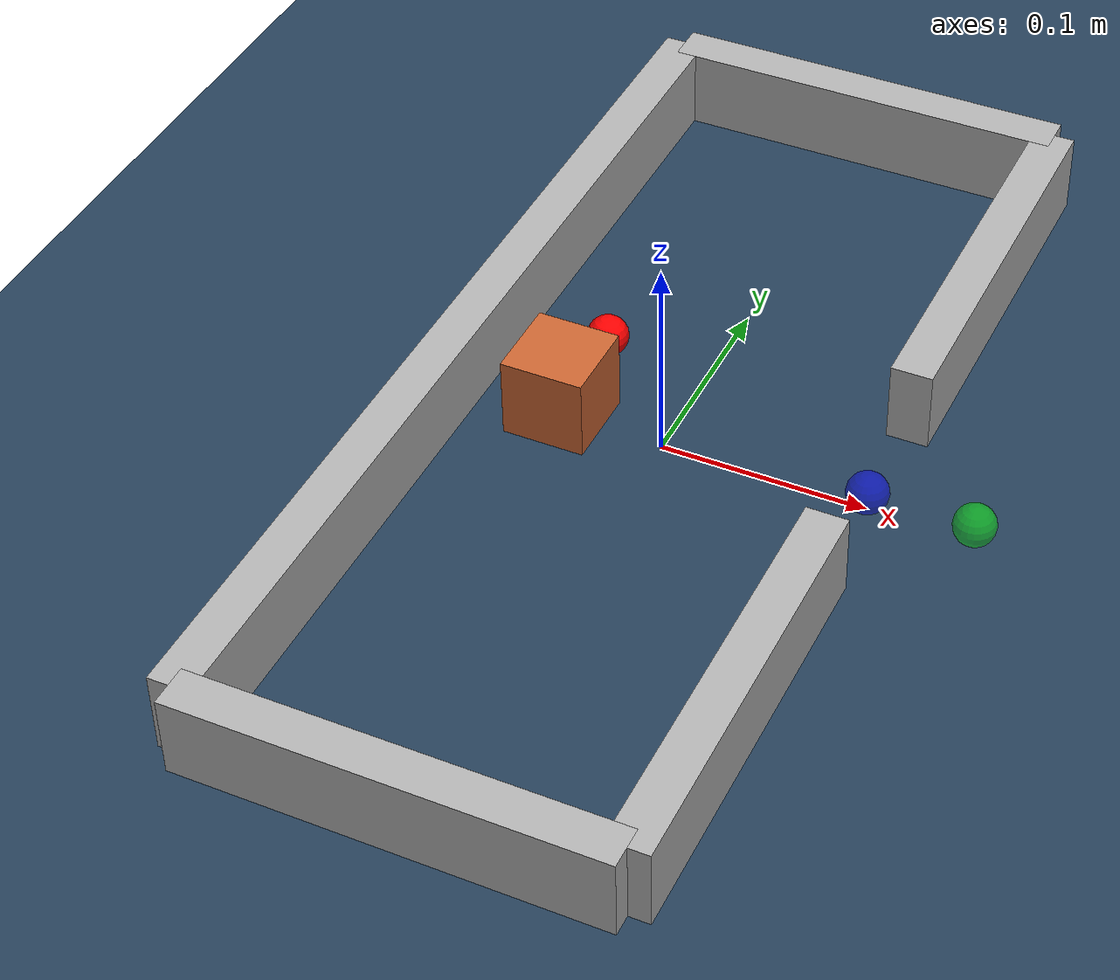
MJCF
<mujoco model="particle_corridor_scene">
  <!-- Model that includes lighting and a ground. -->
  <include file="particle_corridor.xml"/>

  <statistic center="0 0 0" extent="0.9"/>

  <visual>
    <headlight diffuse="0.6 0.6 0.6" ambient="0.3 0.3 0.3" specular="0 0 0"/>
    <rgba haze="0.15 0.25 0.35 1"/>
  </visual>

  <asset>
    <texture type="skybox" builtin="gradient" rgb1="0.3 0.5 0.7" rgb2="0 0 0" width="512" height="3072"/>
    <texture type="2d" name="groundplane" builtin="checker" mark="edge" rgb1="0.2 0.3 0.4" rgb2="0.1 0.2 0.3"
      markrgb="0.8 0.8 0.8" width="300" height="300"/>
    <material name="groundplane" texture="groundplane" texuniform="true" texrepeat="5 5" reflectance="0.2"/>
  </asset>

  <worldbody>
    <light pos="0 0 1"/>
    <geom name="floor" size="0 0 .125" type="plane" material="groundplane"  contype="1"/>
  </worldbody>
</mujoco>

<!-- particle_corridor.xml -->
<mujoco model="particle_corridor">
  <option timestep="0.005" iterations="10" ls_iterations="10" integrator="implicitfast">
    <flag eulerdamp="disable"/>
  </option>
  <default>
    <joint type="hinge" axis="0 0 1" limited="true" range="-.4 .4" damping="0" />
    <motor gear=".1" ctrlrange="-1 1" ctrllimited="true" />
    <default class="translation">
      <position kp="20" kv="10" ctrlrange="-0.4 0.4"/>
    </default>
    <geom friction="0.9"/>
  </default>

  <worldbody>
    <site name="reference" pos="0 0 0.01" size="0.01" rgba="0 0 0 0.0"/>

    <!-- Goal for the particle -->
    <body name="goal" mocap="true" pos="0.15 0.0 0.01" quat="1 0 0 0">
      <geom type="sphere" size=".01" contype="0" conaffinity="0" rgba="0 1 0 .5" />
    </body>

    <!-- Room walls with sites for touch sensors -->
    <!-- Left wall (with door opening) -->
    <body name="left_wall" pos="0.1 0.0 0.02">
      <geom name="left_wall_top" type="box" size="0.01 0.1 0.02" pos="0 0.15 0" rgba="0.7 0.7 0.7 1"
        contype="1" conaffinity="1" solref="0.02 1"/>
      <geom name="left_wall_bottom" type="box" size="0.01 0.1 0.02" pos="0 -0.15 0" rgba="0.7 0.7 0.7 1"
        contype="1" conaffinity="1" solref="0.02 1"/>
      <site name="left_wall_site_top" pos="0 0.15 0" size="0.01 0.1 0.02" type="box" rgba="0 0 1 0.3"/>
      <site name="left_wall_site_bottom" pos="0 -0.15 0" size="0.01 0.1 0.02" type="box" rgba="0 0 1 0.3"/>
    </body>

    <!-- Right wall -->
    <body name="right_wall" pos="-0.1 0.0 0.02">
      <geom name="right_wall_geom" type="box" size="0.01 0.25 0.02" rgba="0.7 0.7 0.7 1"
        contype="1" conaffinity="1" solref="0.02 1"/>
      <site name="right_wall_site" pos="0 0 0" size="0.01 0.25 0.02" type="box" rgba="0 0 1 0.3"/>
    </body>

    <!-- Top wall -->
    <body name="top_wall" pos="0.0 0.25 0.02">
      <geom name="top_wall_geom" type="box" size="0.1 0.01 0.02" rgba="0.7 0.7 0.7 1"
        contype="1" conaffinity="1" solref="0.02 1"/>
      <site name="top_wall_site" pos="0 0 0" size="0.1 0.01 0.02" type="box" rgba="0 0 1 0.3"/>
    </body>

    <!-- Bottom wall -->
    <body name="bottom_wall" pos="0.0 -0.25 0.02">
      <geom name="bottom_wall_geom" type="box" size="0.1 0.01 0.02" rgba="0.7 0.7 0.7 1"
        contype="1" conaffinity="1" solref="0.02 1"/>
      <site name="bottom_wall_site" pos="0 0 0" size="0.1 0.01 0.02" type="box" rgba="0 0 1 0.3"/>
    </body>

    <!-- Door reference site -->
    <site name="door_center" pos="0.1 0 0.01" size="0.01" rgba="0 0 1 0.5"/>

    <!-- The box that should be pushed through the door -->
    <body name="box" pos="-0.05 0 0.02">
      <freejoint name="box_joint"/>
      <geom type="box" name="box" size="0.02 0.02 0.02" condim="3"
        friction="0.6" contype="2" conaffinity="1" solref="0.02 1" priority="1"
        mass="0.15" rgba="0.8 0.4 0.2 1"/>
      <site name="box_site" pos="0 0 0" size="0.01" />
    </body>

    <!-- The particle that pushes the box -->
    <body name="pointmass" pos="-0.05 0.05 0.011">
      <joint name="root_x" type="slide" pos="0 0 0" axis="1 0 0" />
      <joint name="root_y" type="slide" pos="0 0 0" axis="0 1 0" />
      <geom name="pointmass" type="sphere" size=".01" mass=".3" rgba="1 0 0 1"/>
      <site name="particle" pos="0 0 0" size="0.01" />
    </body>
  </worldbody>

  <actuator>
    <position name="x" site="particle" refsite="reference" gear="1 0 0 0 0 0" class="translation"/>
    <position name="y" site="particle" refsite="reference" gear="0 1 0 0 0 0" class="translation"/>
  </actuator>

  <sensor>
    <framepos name="box_position" objtype="site" objname="box_site"/>
    <!-- Touch sensors for wall collision detection -->
    <touch name="left_wall_touch_top" site="left_wall_site_top"/>
    <touch name="left_wall_touch_bottom" site="left_wall_site_bottom"/>
    <touch name="right_wall_touch" site="right_wall_site"/>
    <touch name="top_wall_touch" site="top_wall_site"/>
    <touch name="bottom_wall_touch" site="bottom_wall_site"/>
  </sensor>
</mujoco>
